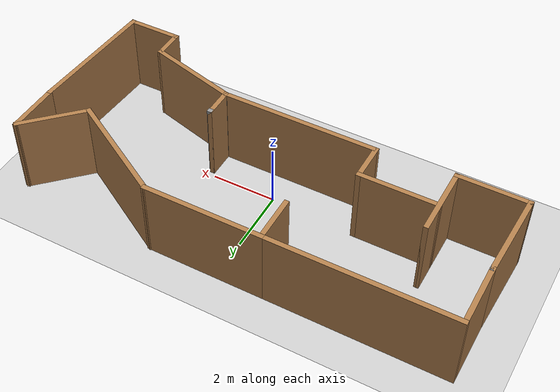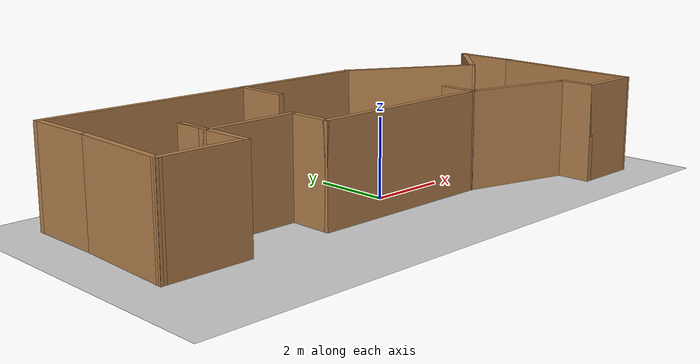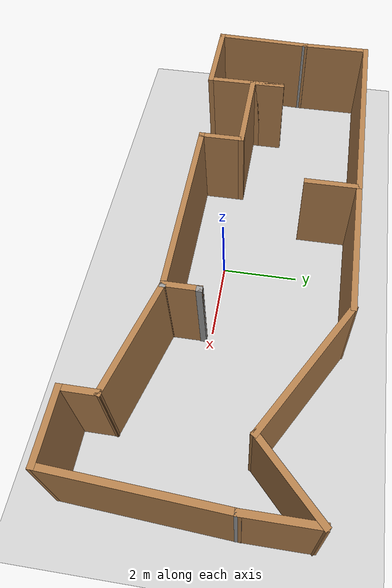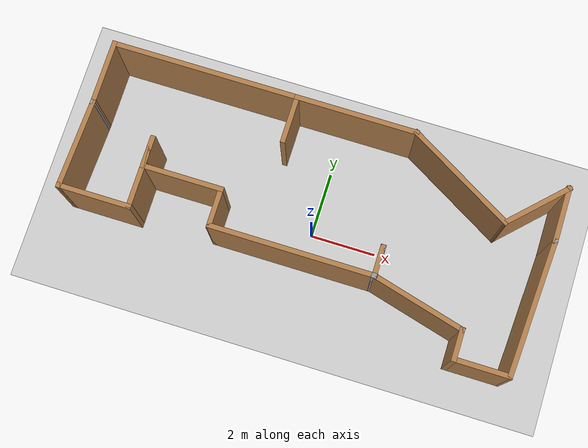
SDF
<sdf version="1.6">
 <world name="default">
  <light name="sun" type="directional">
   <pose>0 0 10 0 -0 0</pose>
   <diffuse>0.8 0.8 0.8 1</diffuse>
   <specular>0.1 0.1 0.1 1</specular>
   <attenuation>
    <range>1000</range>
    <constant>0.9</constant>
    <linear>0.01</linear>
    <quadratic>0.001</quadratic>
   </attenuation>
   <direction>-0.5 0.5 -1</direction>
  </light>
  <model name="ground_plane">
   <static>1</static>
   <link name="link">
    <collision name="collision">
     <geometry><plane><normal>0 0 1</normal><size>100 100</size></plane></geometry>
     <surface><friction><ode><mu>100</mu><mu2>50</mu2></ode></friction></surface>
    </collision>
    <visual name="visual">
     <cast_shadows>0</cast_shadows>
     <geometry><plane><normal>0 0 1</normal><size>100 100</size></plane></geometry>
     <material>
      <script><uri>file://media/materials/scripts/gazebo.material</uri><name>Gazebo/Grey</name></script>
     </material>
    </visual>
   </link>
  </model>
  <gravity>0 0 -9.8</gravity>
  <magnetic_field>6e-06 2.3e-05 -4.2e-05</magnetic_field>
  <atmosphere type="adiabatic"/>
  <physics name="default_physics" default="0" type="ode">
   <max_step_size>0.001</max_step_size>
   <real_time_factor>1</real_time_factor>
   <real_time_update_rate>1000</real_time_update_rate>
  </physics>
  <scene><ambient>0.4 0.4 0.4 1</ambient><background>0.7 0.7 0.7 1</background><shadows>1</shadows></scene>
  <spherical_coordinates>
   <surface_model>EARTH_WGS84</surface_model>
   <latitude_deg>0</latitude_deg>
   <longitude_deg>0</longitude_deg>
   <elevation>0</elevation>
   <heading_deg>0</heading_deg>
  </spherical_coordinates>
  <model name="simpleWorld">
   <pose>-0.185662 0.359954 0 0 -0 0</pose>
   <link name="Wall_0">
    <collision name="Wall_0_Collision">
     <geometry><box><size>5.03042 0.15 2.5</size></box></geometry>
     <pose>0 0 1.25 0 -0 0</pose>
    </collision>
    <visual name="Wall_0_Visual">
     <pose>0 0 1.25 0 -0 0</pose>
     <geometry><box><size>5.03042 0.15 2.5</size></box></geometry>
     <material>
      <script><uri>file://media/materials/scripts/gazebo.material</uri><name>Gazebo/Wood</name></script>
      <ambient>1 1 1 1</ambient>
     </material>
    </visual>
    <pose>-0.075229 -1.39279 0 0 -0 0</pose>
   </link>
   <link name="Wall_1">
    <collision name="Wall_1_Collision">
     <geometry><box><size>0.15 0.15 2.5</size></box></geometry>
     <pose>0 0 1.25 0 -0 0</pose>
    </collision>
    <visual name="Wall_1_Visual">
     <pose>0 0 1.25 0 -0 0</pose>
     <geometry><box><size>0.15 0.15 2.5</size></box></geometry>
     <material>
      <script><uri>file://media/materials/scripts/gazebo.material</uri><name>Gazebo/Grey</name></script>
      <ambient>1 1 1 1</ambient>
     </material>
    </visual>
    <pose>2.36498 -1.39279 0 0 -0 0</pose>
   </link>
   <link name="Wall_10">
    <collision name="Wall_10_Collision">
     <geometry><box><size>5.75 0.15 2.5</size></box></geometry>
     <pose>0 0 1.25 0 -0 0</pose>
    </collision>
    <visual name="Wall_10_Visual">
     <pose>0 0 1.25 0 -0 0</pose>
     <geometry><box><size>5.75 0.15 2.5</size></box></geometry>
     <material>
      <script><uri>file://media/materials/scripts/gazebo.material</uri><name>Gazebo/Wood</name></script>
      <ambient>1 1 1 1</ambient>
     </material>
    </visual>
    <pose>-4.06544 2.95721 0 0 -0 3.14159</pose>
   </link>
   <link name="Wall_11">
    <collision name="Wall_11_Collision">
     <geometry><box><size>2.03042 0.15 2.5</size></box></geometry>
     <pose>0 0 1.25 0 -0 0</pose>
    </collision>
    <visual name="Wall_11_Visual">
     <pose>0 0 1.25 0 -0 0</pose>
     <geometry><box><size>2.03042 0.15 2.5</size></box></geometry>
     <material>
      <script><uri>file://media/materials/scripts/gazebo.material</uri><name>Gazebo/Wood</name></script>
      <ambient>1 1 1 1</ambient>
     </material>
    </visual>
    <pose>-6.86544 2.017 0 0 0 -1.5708</pose>
   </link>
   <link name="Wall_12">
    <collision name="Wall_12_Collision">
     <geometry><box><size>0.15 0.15 2.5</size></box></geometry>
     <pose>0 0 1.25 0 -0 0</pose>
    </collision>
    <visual name="Wall_12_Visual">
     <pose>0 0 1.25 0 -0 0</pose>
     <geometry><box><size>0.15 0.15 2.5</size></box></geometry>
     <material>
      <script><uri>file://media/materials/scripts/gazebo.material</uri><name>Gazebo/Grey</name></script>
      <ambient>1 1 1 1</ambient>
     </material>
    </visual>
    <pose>-6.86544 1.07679 0 0 -0 0</pose>
   </link>
   <link name="Wall_14">
    <collision name="Wall_14_Collision">
     <geometry><box><size>1.25 0.15 2.5</size></box></geometry>
     <pose>0 0 1.25 0 -0 0</pose>
    </collision>
    <visual name="Wall_14_Visual">
     <pose>0 0 1.25 0 -0 0</pose>
     <geometry><box><size>1.25 0.15 2.5</size></box></geometry>
     <material>
      <script><uri>file://media/materials/scripts/gazebo.material</uri><name>Gazebo/Wood</name></script>
      <ambient>1 1 1 1</ambient>
     </material>
    </visual>
    <pose>-2.51544 -0.84279 0 0 -0 1.5708</pose>
   </link>
   <link name="Wall_15">
    <collision name="Wall_15_Collision">
     <geometry><box><size>2.5 0.15 2.5</size></box></geometry>
     <pose>0 0 1.25 0 -0 0</pose>
    </collision>
    <visual name="Wall_15_Visual">
     <pose>0 0 1.25 0 -0 0</pose>
     <geometry><box><size>2.5 0.15 2.5</size></box></geometry>
     <material>
      <script><uri>file://media/materials/scripts/gazebo.material</uri><name>Gazebo/Wood</name></script>
      <ambient>1 1 1 1</ambient>
     </material>
    </visual>
    <pose>-3.69044 -0.29279 0 0 -0 3.14159</pose>
   </link>
   <link name="Wall_16">
    <collision name="Wall_16_Collision">
     <geometry><box><size>1 0.15 2.5</size></box></geometry>
     <pose>0 0 1.25 0 -0 0</pose>
    </collision>
    <visual name="Wall_16_Visual">
     <pose>0 0 1.25 0 -0 0</pose>
     <geometry><box><size>1 0.15 2.5</size></box></geometry>
     <material>
      <script><uri>file://media/materials/scripts/gazebo.material</uri><name>Gazebo/Wood</name></script>
      <ambient>1 1 1 1</ambient>
     </material>
    </visual>
    <pose>-4.86544 0.13221 0 0 -0 1.5708</pose>
   </link>
   <link name="Wall_17">
    <collision name="Wall_17_Collision">
     <geometry><box><size>2.25 0.15 2.5</size></box></geometry>
     <pose>0 0 1.25 0 -0 0</pose>
    </collision>
    <visual name="Wall_17_Visual">
     <pose>0 0 1.25 0 -0 0</pose>
     <geometry><box><size>2.25 0.15 2.5</size></box></geometry>
     <material>
      <script><uri>file://media/materials/scripts/gazebo.material</uri><name>Gazebo/Wood</name></script>
      <ambient>1 1 1 1</ambient>
     </material>
    </visual>
    <pose>-4.86544 -0.49279 0 0 0 -1.5708</pose>
   </link>
   <link name="Wall_2">
    <collision name="Wall_2_Collision">
     <geometry><box><size>0.170418 0.15 2.5</size></box></geometry>
     <pose>0 0 1.25 0 -0 0</pose>
    </collision>
    <visual name="Wall_2_Visual">
     <pose>0 0 1.25 0 -0 0</pose>
     <geometry><box><size>0.170418 0.15 2.5</size></box></geometry>
     <material>
      <script><uri>file://media/materials/scripts/gazebo.material</uri><name>Gazebo/Grey</name></script>
      <ambient>1 1 1 1</ambient>
     </material>
    </visual>
    <pose>2.35477 -1.39279 0 0 -0 3.14159</pose>
   </link>
   <link name="Wall_22">
    <collision name="Wall_22_Collision">
     <geometry><box><size>2.25 0.15 2.5</size></box></geometry>
     <pose>0 0 1.25 0 -0 0</pose>
    </collision>
    <visual name="Wall_22_Visual">
     <pose>0 0 1.25 0 -0 0</pose>
     <geometry><box><size>2.25 0.15 2.5</size></box></geometry>
     <material>
      <script><uri>file://media/materials/scripts/gazebo.material</uri><name>Gazebo/Wood</name></script>
      <ambient>1 1 1 1</ambient>
     </material>
    </visual>
    <pose>-5.91544 -1.54279 0 0 -0 3.14159</pose>
   </link>
   <link name="Wall_23">
    <collision name="Wall_23_Collision">
     <geometry><box><size>2.77149 0.15 2.5</size></box></geometry>
     <pose>0 0 1.25 0 -0 0</pose>
    </collision>
    <visual name="Wall_23_Visual">
     <pose>0 0 1.25 0 -0 0</pose>
     <geometry><box><size>2.77149 0.15 2.5</size></box></geometry>
     <material>
      <script><uri>file://media/materials/scripts/gazebo.material</uri><name>Gazebo/Wood</name></script>
      <ambient>1 1 1 1</ambient>
     </material>
    </visual>
    <pose>-6.91544 -0.232999 0 0 -0 1.53264</pose>
   </link>
   <link name="Wall_25">
    <collision name="Wall_25_Collision">
     <geometry><box><size>3.75 0.15 2.5</size></box></geometry>
     <pose>0 0 1.25 0 -0 0</pose>
    </collision>
    <visual name="Wall_25_Visual">
     <pose>0 0 1.25 0 -0 0</pose>
     <geometry><box><size>3.75 0.15 2.5</size></box></geometry>
     <material>
      <script><uri>file://media/materials/scripts/gazebo.material</uri><name>Gazebo/Wood</name></script>
      <ambient>1 1 1 1</ambient>
     </material>
    </visual>
    <pose>3.89341 2.05721 0 0 0 -0.523599</pose>
   </link>
   <link name="Wall_26">
    <collision name="Wall_26_Collision">
     <geometry><box><size>2.25 0.15 2.5</size></box></geometry>
     <pose>0 0 1.25 0 -0 0</pose>
    </collision>
    <visual name="Wall_26_Visual">
     <pose>0 0 1.25 0 -0 0</pose>
     <geometry><box><size>2.25 0.15 2.5</size></box></geometry>
     <material>
      <script><uri>file://media/materials/scripts/gazebo.material</uri><name>Gazebo/Wood</name></script>
      <ambient>1 1 1 1</ambient>
     </material>
    </visual>
    <pose>6.19472 1.89967 0 0 -0 0.785398</pose>
   </link>
   <link name="Wall_27">
    <collision name="Wall_27_Collision">
     <geometry><box><size>1.75 0.15 2.5</size></box></geometry>
     <pose>0 0 1.25 0 -0 0</pose>
    </collision>
    <visual name="Wall_27_Visual">
     <pose>0 0 1.25 0 -0 0</pose>
     <geometry><box><size>1.75 0.15 2.5</size></box></geometry>
     <material>
      <script><uri>file://media/materials/scripts/gazebo.material</uri><name>Gazebo/Wood</name></script>
      <ambient>1 1 1 1</ambient>
     </material>
    </visual>
    <pose>6.93718 1.84213 0 0 0 -1.5708</pose>
   </link>
   <link name="Wall_28">
    <collision name="Wall_28_Collision">
     <geometry><box><size>0.15 0.15 2.5</size></box></geometry>
     <pose>0 0 1.25 0 -0 0</pose>
    </collision>
    <visual name="Wall_28_Visual">
     <pose>0 0 1.25 0 -0 0</pose>
     <geometry><box><size>0.15 0.15 2.5</size></box></geometry>
     <material>
      <script><uri>file://media/materials/scripts/gazebo.material</uri><name>Gazebo/Grey</name></script>
      <ambient>1 1 1 1</ambient>
     </material>
    </visual>
    <pose>6.93718 1.04213 0 0 -0 0</pose>
   </link>
   <link name="Wall_29">
    <collision name="Wall_29_Collision">
     <geometry><box><size>0.15 0.15 2.5</size></box></geometry>
     <pose>0 0 1.25 0 -0 0</pose>
    </collision>
    <visual name="Wall_29_Visual">
     <pose>0 0 1.25 0 -0 0</pose>
     <geometry><box><size>0.15 0.15 2.5</size></box></geometry>
     <material>
      <script><uri>file://media/materials/scripts/gazebo.material</uri><name>Gazebo/Grey</name></script>
      <ambient>1 1 1 1</ambient>
     </material>
    </visual>
    <pose>6.93718 1.04213 0 0 -0 0</pose>
   </link>
   <link name="Wall_31">
    <collision name="Wall_31_Collision">
     <geometry><box><size>1 0.15 2.5</size></box></geometry>
     <pose>0 0 1.25 0 -0 0</pose>
    </collision>
    <visual name="Wall_31_Visual">
     <pose>0 0 1.25 0 -0 0</pose>
     <geometry><box><size>1 0.15 2.5</size></box></geometry>
     <material>
      <script><uri>file://media/materials/scripts/gazebo.material</uri><name>Gazebo/Wood</name></script>
      <ambient>1 1 1 1</ambient>
     </material>
    </visual>
    <pose>2.34977 -0.96779 0 0 -0 1.5708</pose>
   </link>
   <link name="Wall_32">
    <collision name="Wall_32_Collision">
     <geometry><box><size>0.15 0.15 2.5</size></box></geometry>
     <pose>0 0 1.25 0 -0 0</pose>
    </collision>
    <visual name="Wall_32_Visual">
     <pose>0 0 1.25 0 -0 0</pose>
     <geometry><box><size>0.15 0.15 2.5</size></box></geometry>
     <material>
      <script><uri>file://media/materials/scripts/gazebo.material</uri><name>Gazebo/Grey</name></script>
      <ambient>1 1 1 1</ambient>
     </material>
    </visual>
    <pose>2.36498 -0.54279 0 0 -0 0</pose>
   </link>
   <link name="Wall_35">
    <collision name="Wall_35_Collision">
     <geometry><box><size>3 0.15 2.5</size></box></geometry>
     <pose>0 0 1.25 0 -0 0</pose>
    </collision>
    <visual name="Wall_35_Visual">
     <pose>0 0 1.25 0 -0 0</pose>
     <geometry><box><size>3 0.15 2.5</size></box></geometry>
     <material>
      <script><uri>file://media/materials/scripts/gazebo.material</uri><name>Gazebo/Wood</name></script>
      <ambient>1 1 1 1</ambient>
     </material>
    </visual>
    <pose>3.72621 -1.76161 0 0 0 -0.261799</pose>
   </link>
   <link name="Wall_36">
    <collision name="Wall_36_Collision">
     <geometry><box><size>1 0.15 2.5</size></box></geometry>
     <pose>0 0 1.25 0 -0 0</pose>
    </collision>
    <visual name="Wall_36_Visual">
     <pose>0 0 1.25 0 -0 0</pose>
     <geometry><box><size>1 0.15 2.5</size></box></geometry>
     <material>
      <script><uri>file://media/materials/scripts/gazebo.material</uri><name>Gazebo/Wood</name></script>
      <ambient>1 1 1 1</ambient>
     </material>
    </visual>
    <pose>5.10266 -2.55542 0 0 0 -1.5708</pose>
   </link>
   <link name="Wall_37">
    <collision name="Wall_37_Collision">
     <geometry><box><size>1.75 0.15 2.5</size></box></geometry>
     <pose>0 0 1.25 0 -0 0</pose>
    </collision>
    <visual name="Wall_37_Visual">
     <pose>0 0 1.25 0 -0 0</pose>
     <geometry><box><size>1.75 0.15 2.5</size></box></geometry>
     <material>
      <script><uri>file://media/materials/scripts/gazebo.material</uri><name>Gazebo/Wood</name></script>
      <ambient>1 1 1 1</ambient>
     </material>
    </visual>
    <pose>5.90266 -2.98042 0 0 -0 0</pose>
   </link>
   <link name="Wall_38">
    <collision name="Wall_38_Collision">
     <geometry><box><size>4.17939 0.15 2.5</size></box></geometry>
     <pose>0 0 1.25 0 -0 0</pose>
    </collision>
    <visual name="Wall_38_Visual">
     <pose>0 0 1.25 0 -0 0</pose>
     <geometry><box><size>4.17939 0.15 2.5</size></box></geometry>
     <material>
      <script><uri>file://media/materials/scripts/gazebo.material</uri><name>Gazebo/Wood</name></script>
      <ambient>1 1 1 1</ambient>
     </material>
    </visual>
    <pose>6.81992 -0.969145 0 0 -0 1.51256</pose>
   </link>
   <link name="Wall_6">
    <collision name="Wall_6_Collision">
     <geometry><box><size>3.75 0.15 2.5</size></box></geometry>
     <pose>0 0 1.25 0 -0 0</pose>
    </collision>
    <visual name="Wall_6_Visual">
     <pose>0 0 1.25 0 -0 0</pose>
     <geometry><box><size>3.75 0.15 2.5</size></box></geometry>
     <material>
      <script><uri>file://media/materials/scripts/gazebo.material</uri><name>Gazebo/Wood</name></script>
      <ambient>1 1 1 1</ambient>
     </material>
    </visual>
    <pose>0.534562 2.95721 0 0 -0 3.14159</pose>
   </link>
   <link name="Wall_7">
    <collision name="Wall_7_Collision">
     <geometry><box><size>1.5 0.15 2.5</size></box></geometry>
     <pose>0 0 1.25 0 -0 0</pose>
    </collision>
    <visual name="Wall_7_Visual">
     <pose>0 0 1.25 0 -0 0</pose>
     <geometry><box><size>1.5 0.15 2.5</size></box></geometry>
     <material>
      <script><uri>file://media/materials/scripts/gazebo.material</uri><name>Gazebo/Wood</name></script>
      <ambient>1 1 1 1</ambient>
     </material>
    </visual>
    <pose>-1.26544 2.28221 0 0 0 -1.5708</pose>
   </link>
   <static>1</static>
  </model>
 </world>
</sdf>
